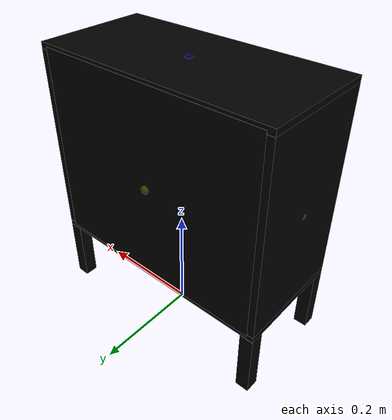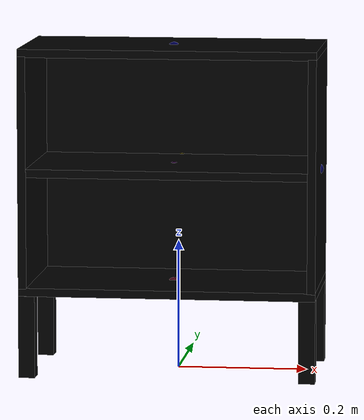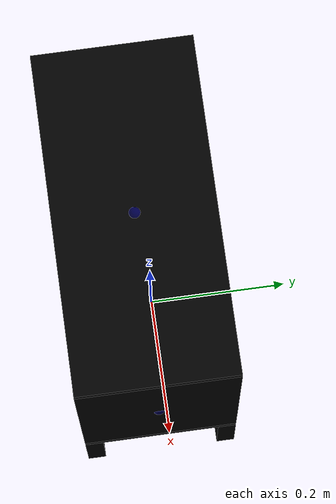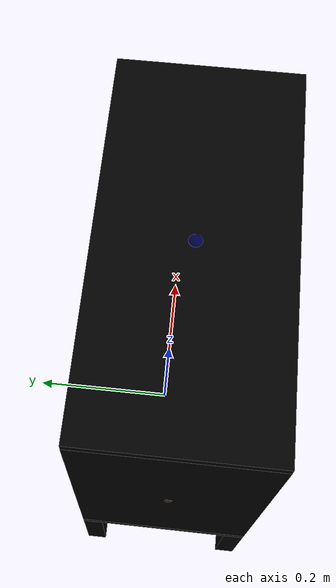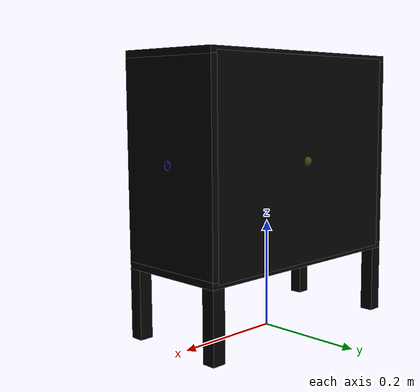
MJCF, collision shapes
<mujoco model="bookcase_agerum_0006">
  <custom>
    <numeric data="0.424249 0.27183 0.01267 0.707107 0.0 -0.707107 -0.0" name="0_part0_initpos" />
    <numeric data="0.065642 -0.058725 0.00626 0.0 1.0 0.0 0.0" name="9_part9_initpos" />
    <numeric data="-0.443256 0.052999 0.0063 0.707107 0.0 0.707107 0.0" name="8_part8_initpos" />
    <numeric data="0.521462 -0.055008 0.00632 -0.707107 -0.0 0.707107 -0.0" name="7_part7_initpos" />
    <numeric data="-0.430766 0.333003 0.00632 1.0 0.0 0.0 0.0" name="6_part6_initpos" />
    <numeric data="-0.454857 -0.310557 0.00156 0.0 0.0 -0.707107 -0.707107" name="5_part5_initpos" />
    <numeric data="0.058187 0.242598 0.0063 0.0 1.0 0.0 0.0" name="4_part4_initpos" />
    <numeric data="0.427126 0.340304 0.01267 -0.707107 0.0 0.707107 0.0" name="3_part3_initpos" />
    <numeric data="0.424231 0.179422 0.01267 0.707107 -0.0 -0.707107 0.0" name="2_part2_initpos" />
    <numeric data="0.424084 0.41124 0.01267 0.492237 -0.492237 -0.507644 0.507645" name="1_part1_initpos" />
  </custom>
  <asset>
    <mesh file="bookcase_agerum_0006/0.stl" name="part0" scale="0.0005 0.0005 0.0005" />
    <mesh file="bookcase_agerum_0006/9.stl" name="part9" scale="0.0005 0.0005 0.0005" />
    <mesh file="bookcase_agerum_0006/8.stl" name="part8" scale="0.0005 0.0005 0.0005" />
    <mesh file="bookcase_agerum_0006/7.stl" name="part7" scale="0.0005 0.0005 0.0005" />
    <mesh file="bookcase_agerum_0006/6.stl" name="part6" scale="0.0005 0.0005 0.0005" />
    <mesh file="bookcase_agerum_0006/5.stl" name="part5" scale="0.0005 0.0005 0.0005" />
    <mesh file="bookcase_agerum_0006/4.stl" name="part4" scale="0.0005 0.0005 0.0005" />
    <mesh file="bookcase_agerum_0006/3.stl" name="part3" scale="0.0005 0.0005 0.0005" />
    <mesh file="bookcase_agerum_0006/2.stl" name="part2" scale="0.0005 0.0005 0.0005" />
    <mesh file="bookcase_agerum_0006/1.stl" name="part1" scale="0.0005 0.0005 0.0005" />
  </asset>
  <worldbody><body name="combined_body" pos="0.21 0.08 0.06414999389648437" quat="1 0 0 0"><geom conaffinity="0" contype="0" density="0" mesh="part0" name="0_part0_mesh" pos="0.0 -5e-11 0.0" rgba="0.82 0.71 0.55 1" type="mesh" quat="1 0 0 0" />
      <geom density="50" name="noviz_collision_0_part0_0" pos="0.0 -5e-11 0.0" quat="1 0 0 0" rgba="0 0 0 0" size="0.01272 0.0127 0.06363" solref="0.001 1" type="box" />
      <site name="0_part0_horizontal_radius_site" pos="0.0 -5e-11 0.0" quat="1 0 0 0" rgba="0 0 0 0" size="0.01" />
      <site name="0_part0_top_site" pos="0.0 -5e-11 0.0" quat="1 0 0 0" rgba="0 0 0 0" size="0.01" />
      <site name="0_part0_bottom_site" pos="0.0 -5e-11 0.0" quat="1 0 0 0" rgba="0 0 0 0" size="0.01" />
      <site name="0_part0_corner_site8" pos="0.0 -5e-11 0.0" quat="1 0 0 0" rgba="0 0 0 0" size="0.008" />
      <site name="0_part0_corner_site7" pos="0.0 -5e-11 0.0" quat="1 0 0 0" rgba="0 0 0 0" size="0.008" />
      <site name="0_part0_corner_site6" pos="0.0 -5e-11 0.0" quat="1 0 0 0" rgba="0 0 0 0" size="0.008" />
      <site name="0_part0_corner_site5" pos="0.0 -5e-11 0.0" quat="1 0 0 0" rgba="0 0 0 0" size="0.008" />
      <site name="0_part0_corner_site4" pos="0.0 -5e-11 0.0" quat="1 0 0 0" rgba="0 0 0 0" size="0.008" />
      <site name="0_part0_corner_site3" pos="0.0 -5e-11 0.0" quat="1 0 0 0" rgba="0 0 0 0" size="0.008" />
      <site name="0_part0_corner_site2" pos="0.0 -5e-11 0.0" quat="1 0 0 0" rgba="0 0 0 0" size="0.008" />
      <site name="0_part0_corner_site1" pos="0.0 -5e-11 0.0" quat="1 0 0 0" rgba="0 0 0 0" size="0.008" />
      <site name="leg-floor,0,90,180,270,conn_site4" pos="0.0 -5e-11 0.0" quat="1 0 0 0" rgba="0.9019 0.0980 0.2941 0.3" size="0.008" />
    <geom conaffinity="0" contype="0" density="0" mesh="part9" name="9_part9_mesh" pos="-0.21589999635 -0.09524999645 0.43814999390000003" rgba="0.82 0.71 0.55 1" type="mesh" quat="1 0 0 0" />
      <geom density="50" name="noviz_collision_9_part9_0" pos="-0.21589999635 -0.09524999645 0.43814999390000003" quat="1 0 0 0" rgba="0 0 0 0" size="0.2286 0.10759 0.00632" solref="0.001 1" type="box" />
      <site name="9_part9_horizontal_radius_site" pos="-0.21589999635 -0.09524999645 0.43814999390000003" quat="1 0 0 0" rgba="0 0 0 0" size="0.01" />
      <site name="9_part9_top_site" pos="-0.21589999635 -0.09524999645 0.43814999390000003" quat="1 0 0 0" rgba="0 0 0 0" size="0.01" />
      <site name="9_part9_bottom_site" pos="-0.21589999635 -0.09524999645 0.43814999390000003" quat="1 0 0 0" rgba="0 0 0 0" size="0.01" />
      <site name="9_part9_corner_site8" pos="-0.21589999635 -0.09524999645 0.43814999390000003" quat="1 0 0 0" rgba="0 0 0 0" size="0.008" />
      <site name="9_part9_corner_site7" pos="-0.21589999635 -0.09524999645 0.43814999390000003" quat="1 0 0 0" rgba="0 0 0 0" size="0.008" />
      <site name="9_part9_corner_site6" pos="-0.21589999635 -0.09524999645 0.43814999390000003" quat="1 0 0 0" rgba="0 0 0 0" size="0.008" />
      <site name="9_part9_corner_site5" pos="-0.21589999635 -0.09524999645 0.43814999390000003" quat="1 0 0 0" rgba="0 0 0 0" size="0.008" />
      <site name="9_part9_corner_site4" pos="-0.21589999635 -0.09524999645 0.43814999390000003" quat="1 0 0 0" rgba="0 0 0 0" size="0.008" />
      <site name="9_part9_corner_site3" pos="-0.21589999635 -0.09524999645 0.43814999390000003" quat="1 0 0 0" rgba="0 0 0 0" size="0.008" />
      <site name="9_part9_corner_site2" pos="-0.21589999635 -0.09524999645 0.43814999390000003" quat="1 0 0 0" rgba="0 0 0 0" size="0.008" />
      <site name="9_part9_corner_site1" pos="-0.21589999635 -0.09524999645 0.43814999390000003" quat="1 0 0 0" rgba="0 0 0 0" size="0.008" />
      <site name="top-leftwall,0,conn_site1" pos="-0.21589999635 -0.09524999645 0.43814999390000003" quat="1 0 0 0" rgba="0.2352 0.7058 0.2941 0.3" size="0.008" />
      <site name="top-back,0,conn_site1" pos="-0.21589999635 -0.09524999645 0.43814999390000003" quat="1 0 0 0" rgba="1.0 0.8823 0.0980 0.3" size="0.008" />
      <site name="top-rightwall,0,180,conn_site1" pos="-0.21589999635 -0.09524999645 0.43814999390000003" quat="1 0 0 0" rgba="0 0 1 0.3" size="0.01" />
    <geom conaffinity="0" contype="0" density="0" mesh="part8" name="8_part8_mesh" pos="0.00635000055 -0.09524999645 0.2539999977" rgba="0.82 0.71 0.55 1" type="mesh" quat="1 0 0 0" />
      <geom density="50" name="noviz_collision_8_part8_0" pos="0.00635000055 -0.09524999645 0.2539999977" quat="1 0 0 0" rgba="0 0 0 0" size="0.00634 0.10796 0.17906" solref="0.001 1" type="box" />
      <site name="8_part8_horizontal_radius_site" pos="0.00635000055 -0.09524999645 0.2539999977" quat="1 0 0 0" rgba="0 0 0 0" size="0.01" />
      <site name="8_part8_top_site" pos="0.00635000055 -0.09524999645 0.2539999977" quat="1 0 0 0" rgba="0 0 0 0" size="0.01" />
      <site name="8_part8_bottom_site" pos="0.00635000055 -0.09524999645 0.2539999977" quat="1 0 0 0" rgba="0 0 0 0" size="0.01" />
      <site name="8_part8_corner_site8" pos="0.00635000055 -0.09524999645 0.2539999977" quat="1 0 0 0" rgba="0 0 0 0" size="0.008" />
      <site name="8_part8_corner_site7" pos="0.00635000055 -0.09524999645 0.2539999977" quat="1 0 0 0" rgba="0 0 0 0" size="0.008" />
      <site name="8_part8_corner_site6" pos="0.00635000055 -0.09524999645 0.2539999977" quat="1 0 0 0" rgba="0 0 0 0" size="0.008" />
      <site name="8_part8_corner_site5" pos="0.00635000055 -0.09524999645 0.2539999977" quat="1 0 0 0" rgba="0 0 0 0" size="0.008" />
      <site name="8_part8_corner_site4" pos="0.00635000055 -0.09524999645 0.2539999977" quat="1 0 0 0" rgba="0 0 0 0" size="0.008" />
      <site name="8_part8_corner_site3" pos="0.00635000055 -0.09524999645 0.2539999977" quat="1 0 0 0" rgba="0 0 0 0" size="0.008" />
      <site name="8_part8_corner_site2" pos="0.00635000055 -0.09524999645 0.2539999977" quat="1 0 0 0" rgba="0 0 0 0" size="0.008" />
      <site name="8_part8_corner_site1" pos="0.00635000055 -0.09524999645 0.2539999977" quat="1 0 0 0" rgba="0 0 0 0" size="0.008" />
      <site name="rightwall-shelf,0,conn_site1" pos="0.00635000055 -0.09524999645 0.2539999977" quat="1 0 0 0" rgba="0.2627 0.3882 0.8470 0.3" size="0.008" />
      <site name="rightwall-top,0,180,conn_site1" pos="0.00635000055 -0.09524999645 0.2539999977" quat="1 0 0 0" rgba="0 0 1 0.3" size="0.01" />
      <site name="rightwall-floor,0,180,conn_site1" pos="0.00635000055 -0.09524999645 0.2539999977" quat="1 0 0 0" rgba="0 0 1 0.3" size="0.01" />
    <geom conaffinity="0" contype="0" density="0" mesh="part7" name="7_part7_mesh" pos="-0.4381499995 -0.09524999645 0.2539999977" rgba="0.82 0.71 0.55 1" type="mesh" quat="1 0 0 0" />
      <geom density="50" name="noviz_collision_7_part7_0" pos="-0.4381499995 -0.09524999645 0.2539999977" quat="1 0 0 0" rgba="0 0 0 0" size="0.00636 0.10796 0.17906" solref="0.001 1" type="box" />
      <site name="7_part7_horizontal_radius_site" pos="-0.4381499995 -0.09524999645 0.2539999977" quat="1 0 0 0" rgba="0 0 0 0" size="0.01" />
      <site name="7_part7_top_site" pos="-0.4381499995 -0.09524999645 0.2539999977" quat="1 0 0 0" rgba="0 0 0 0" size="0.01" />
      <site name="7_part7_bottom_site" pos="-0.4381499995 -0.09524999645 0.2539999977" quat="1 0 0 0" rgba="0 0 0 0" size="0.01" />
      <site name="7_part7_corner_site8" pos="-0.4381499995 -0.09524999645 0.2539999977" quat="1 0 0 0" rgba="0 0 0 0" size="0.008" />
      <site name="7_part7_corner_site7" pos="-0.4381499995 -0.09524999645 0.2539999977" quat="1 0 0 0" rgba="0 0 0 0" size="0.008" />
      <site name="7_part7_corner_site6" pos="-0.4381499995 -0.09524999645 0.2539999977" quat="1 0 0 0" rgba="0 0 0 0" size="0.008" />
      <site name="7_part7_corner_site5" pos="-0.4381499995 -0.09524999645 0.2539999977" quat="1 0 0 0" rgba="0 0 0 0" size="0.008" />
      <site name="7_part7_corner_site4" pos="-0.4381499995 -0.09524999645 0.2539999977" quat="1 0 0 0" rgba="0 0 0 0" size="0.008" />
      <site name="7_part7_corner_site3" pos="-0.4381499995 -0.09524999645 0.2539999977" quat="1 0 0 0" rgba="0 0 0 0" size="0.008" />
      <site name="7_part7_corner_site2" pos="-0.4381499995 -0.09524999645 0.2539999977" quat="1 0 0 0" rgba="0 0 0 0" size="0.008" />
      <site name="7_part7_corner_site1" pos="-0.4381499995 -0.09524999645 0.2539999977" quat="1 0 0 0" rgba="0 0 0 0" size="0.008" />
      <site name="leftwall-floor,0,conn_site1" pos="-0.4381499995 -0.09524999645 0.2539999977" quat="1 0 0 0" rgba="0.9607 0.5098 0.1921 0.3" size="0.008" />
      <site name="leftwall-shelf,0,conn_site1" pos="-0.4381499995 -0.09524999645 0.2539999977" quat="1 0 0 0" rgba="0.5686 0.1176 0.7058 0.3" size="0.008" />
      <site name="leftwall-top,0,conn_site1" pos="-0.4381499995 -0.09524999645 0.2539999977" quat="1 0 0 0" rgba="0.2352 0.7058 0.2941 0.3" size="0.008" />
    <geom conaffinity="0" contype="0" density="0" mesh="part6" name="6_part6_mesh" pos="-0.21590000155000003 -0.09683749645 0.254" rgba="0.82 0.71 0.55 1" type="mesh" quat="1 0 0 0" />
      <geom density="50" name="noviz_collision_6_part6_0" pos="-0.21590000155000003 -0.09683749645 0.254" quat="1 0 0 0" rgba="0 0 0 0" size="0.2159 0.10642 0.00635" solref="0.001 1" type="box" />
      <site name="6_part6_horizontal_radius_site" pos="-0.21590000155000003 -0.09683749645 0.254" quat="1 0 0 0" rgba="0 0 0 0" size="0.01" />
      <site name="6_part6_top_site" pos="-0.21590000155000003 -0.09683749645 0.254" quat="1 0 0 0" rgba="0 0 0 0" size="0.01" />
      <site name="6_part6_bottom_site" pos="-0.21590000155000003 -0.09683749645 0.254" quat="1 0 0 0" rgba="0 0 0 0" size="0.01" />
      <site name="6_part6_corner_site8" pos="-0.21590000155000003 -0.09683749645 0.254" quat="1 0 0 0" rgba="0 0 0 0" size="0.008" />
      <site name="6_part6_corner_site7" pos="-0.21590000155000003 -0.09683749645 0.254" quat="1 0 0 0" rgba="0 0 0 0" size="0.008" />
      <site name="6_part6_corner_site6" pos="-0.21590000155000003 -0.09683749645 0.254" quat="1 0 0 0" rgba="0 0 0 0" size="0.008" />
      <site name="6_part6_corner_site5" pos="-0.21590000155000003 -0.09683749645 0.254" quat="1 0 0 0" rgba="0 0 0 0" size="0.008" />
      <site name="6_part6_corner_site4" pos="-0.21590000155000003 -0.09683749645 0.254" quat="1 0 0 0" rgba="0 0 0 0" size="0.008" />
      <site name="6_part6_corner_site3" pos="-0.21590000155000003 -0.09683749645 0.254" quat="1 0 0 0" rgba="0 0 0 0" size="0.008" />
      <site name="6_part6_corner_site2" pos="-0.21590000155000003 -0.09683749645 0.254" quat="1 0 0 0" rgba="0 0 0 0" size="0.008" />
      <site name="6_part6_corner_site1" pos="-0.21590000155000003 -0.09683749645 0.254" quat="1 0 0 0" rgba="0 0 0 0" size="0.008" />
      <site name="shelf-leftwall,0,conn_site1" pos="-0.21590000155000003 -0.09683749645 0.254" quat="1 0 0 0" rgba="0.5686 0.1176 0.7058 0.3" size="0.008" />
      <site name="shelf-rightwall,0,conn_site1" pos="-0.21590000155000003 -0.09683749645 0.254" quat="1 0 0 0" rgba="0.2627 0.3882 0.8470 0.3" size="0.008" />
    <geom conaffinity="0" contype="0" density="0" mesh="part5" name="5_part5_mesh" pos="-0.21590000155000003 0.0111125031 0.254" rgba="0.82 0.71 0.55 1" type="mesh" quat="1 0 0 0" />
      <geom density="50" name="noviz_collision_5_part5_0" pos="-0.21590000155000003 0.0111125031 0.254" quat="1 0 0 0" rgba="0 0 0 0" size="0.2159 0.00159 0.18415" solref="0.001 1" type="box" />
      <site name="5_part5_horizontal_radius_site" pos="-0.21590000155000003 0.0111125031 0.254" quat="1 0 0 0" rgba="0 0 0 0" size="0.01" />
      <site name="5_part5_top_site" pos="-0.21590000155000003 0.0111125031 0.254" quat="1 0 0 0" rgba="0 0 0 0" size="0.01" />
      <site name="5_part5_bottom_site" pos="-0.21590000155000003 0.0111125031 0.254" quat="1 0 0 0" rgba="0 0 0 0" size="0.01" />
      <site name="5_part5_corner_site8" pos="-0.21590000155000003 0.0111125031 0.254" quat="1 0 0 0" rgba="0 0 0 0" size="0.008" />
      <site name="5_part5_corner_site7" pos="-0.21590000155000003 0.0111125031 0.254" quat="1 0 0 0" rgba="0 0 0 0" size="0.008" />
      <site name="5_part5_corner_site6" pos="-0.21590000155000003 0.0111125031 0.254" quat="1 0 0 0" rgba="0 0 0 0" size="0.008" />
      <site name="5_part5_corner_site5" pos="-0.21590000155000003 0.0111125031 0.254" quat="1 0 0 0" rgba="0 0 0 0" size="0.008" />
      <site name="5_part5_corner_site4" pos="-0.21590000155000003 0.0111125031 0.254" quat="1 0 0 0" rgba="0 0 0 0" size="0.008" />
      <site name="5_part5_corner_site3" pos="-0.21590000155000003 0.0111125031 0.254" quat="1 0 0 0" rgba="0 0 0 0" size="0.008" />
      <site name="5_part5_corner_site2" pos="-0.21590000155000003 0.0111125031 0.254" quat="1 0 0 0" rgba="0 0 0 0" size="0.008" />
      <site name="5_part5_corner_site1" pos="-0.21590000155000003 0.0111125031 0.254" quat="1 0 0 0" rgba="0 0 0 0" size="0.008" />
      <site name="back-top,0,conn_site1" pos="-0.21590000155000003 0.0111125031 0.254" quat="1 0 0 0" rgba="1.0 0.8823 0.0980 0.3" size="0.008" />
    <geom conaffinity="0" contype="0" density="0" mesh="part4" name="4_part4_mesh" pos="-0.21589999635 -0.09524999645 0.06985" rgba="0.82 0.71 0.55 1" type="mesh" quat="1 0 0 0" />
      <geom density="50" name="noviz_collision_4_part4_0" pos="-0.21589999635 -0.09524999645 0.06985" quat="1 0 0 0" rgba="0 0 0 0" size="0.2286 0.10759 0.00634" solref="0.001 1" type="box" />
      <site name="4_part4_horizontal_radius_site" pos="-0.21589999635 -0.09524999645 0.06985" quat="1 0 0 0" rgba="0 0 0 0" size="0.01" />
      <site name="4_part4_top_site" pos="-0.21589999635 -0.09524999645 0.06985" quat="1 0 0 0" rgba="0 0 0 0" size="0.01" />
      <site name="4_part4_bottom_site" pos="-0.21589999635 -0.09524999645 0.06985" quat="1 0 0 0" rgba="0 0 0 0" size="0.01" />
      <site name="4_part4_corner_site8" pos="-0.21589999635 -0.09524999645 0.06985" quat="1 0 0 0" rgba="0 0 0 0" size="0.008" />
      <site name="4_part4_corner_site7" pos="-0.21589999635 -0.09524999645 0.06985" quat="1 0 0 0" rgba="0 0 0 0" size="0.008" />
      <site name="4_part4_corner_site6" pos="-0.21589999635 -0.09524999645 0.06985" quat="1 0 0 0" rgba="0 0 0 0" size="0.008" />
      <site name="4_part4_corner_site5" pos="-0.21589999635 -0.09524999645 0.06985" quat="1 0 0 0" rgba="0 0 0 0" size="0.008" />
      <site name="4_part4_corner_site4" pos="-0.21589999635 -0.09524999645 0.06985" quat="1 0 0 0" rgba="0 0 0 0" size="0.008" />
      <site name="4_part4_corner_site3" pos="-0.21589999635 -0.09524999645 0.06985" quat="1 0 0 0" rgba="0 0 0 0" size="0.008" />
      <site name="4_part4_corner_site2" pos="-0.21589999635 -0.09524999645 0.06985" quat="1 0 0 0" rgba="0 0 0 0" size="0.008" />
      <site name="4_part4_corner_site1" pos="-0.21589999635 -0.09524999645 0.06985" quat="1 0 0 0" rgba="0 0 0 0" size="0.008" />
      <site name="floor-leg,0,90,180,270,conn_site4" pos="-0.21589999635 -0.09524999645 0.06985" quat="1 0 0 0" rgba="0.9019 0.0980 0.2941 0.3" size="0.01" />
      <site name="floor-leg,0,90,180,270,conn_site3" pos="-0.21589999635 -0.09524999645 0.06985" quat="1 0 0 0" rgba="0.9019 0.0980 0.2941 0.3" size="0.01" />
      <site name="floor-leg,0,90,180,270,conn_site2" pos="-0.21589999635 -0.09524999645 0.06985" quat="1 0 0 0" rgba="0.9019 0.0980 0.2941 0.3" size="0.01" />
      <site name="floor-leg,0,90,180,270,conn_site1" pos="-0.21589999635 -0.09524999645 0.06985" quat="1 0 0 0" rgba="0.9019 0.0980 0.2941 0.3" size="0.01" />
      <site name="floor-leftwall,0,conn_site1" pos="-0.21589999635 -0.09524999645 0.06985" quat="1 0 0 0" rgba="0.9607 0.5098 0.1921 0.3" size="0.008" />
      <site name="floor-rightwall,0,180,conn_site1" pos="-0.21589999635 -0.09524999645 0.06985" quat="1 0 0 0" rgba="0 0 1 0.3" size="0.01" />
    <geom conaffinity="0" contype="0" density="0" mesh="part3" name="3_part3_mesh" pos="-0.43179999695 -0.1904999879 0.0" rgba="0.82 0.71 0.55 1" type="mesh" quat="1 0 0 0" />
      <geom density="50" name="noviz_collision_3_part3_0" pos="-0.43179999695 -0.1904999879 0.0" quat="1 0 0 0" rgba="0 0 0 0" size="0.01268 0.0127 0.06363" solref="0.001 1" type="box" />
      <site name="3_part3_horizontal_radius_site" pos="-0.43179999695 -0.1904999879 0.0" quat="1 0 0 0" rgba="0 0 0 0" size="0.01" />
      <site name="3_part3_top_site" pos="-0.43179999695 -0.1904999879 0.0" quat="1 0 0 0" rgba="0 0 0 0" size="0.01" />
      <site name="3_part3_bottom_site" pos="-0.43179999695 -0.1904999879 0.0" quat="1 0 0 0" rgba="0 0 0 0" size="0.01" />
      <site name="3_part3_corner_site8" pos="-0.43179999695 -0.1904999879 0.0" quat="1 0 0 0" rgba="0 0 0 0" size="0.008" />
      <site name="3_part3_corner_site7" pos="-0.43179999695 -0.1904999879 0.0" quat="1 0 0 0" rgba="0 0 0 0" size="0.008" />
      <site name="3_part3_corner_site6" pos="-0.43179999695 -0.1904999879 0.0" quat="1 0 0 0" rgba="0 0 0 0" size="0.008" />
      <site name="3_part3_corner_site5" pos="-0.43179999695 -0.1904999879 0.0" quat="1 0 0 0" rgba="0 0 0 0" size="0.008" />
      <site name="3_part3_corner_site4" pos="-0.43179999695 -0.1904999879 0.0" quat="1 0 0 0" rgba="0 0 0 0" size="0.008" />
      <site name="3_part3_corner_site3" pos="-0.43179999695 -0.1904999879 0.0" quat="1 0 0 0" rgba="0 0 0 0" size="0.008" />
      <site name="3_part3_corner_site2" pos="-0.43179999695 -0.1904999879 0.0" quat="1 0 0 0" rgba="0 0 0 0" size="0.008" />
      <site name="3_part3_corner_site1" pos="-0.43179999695 -0.1904999879 0.0" quat="1 0 0 0" rgba="0 0 0 0" size="0.008" />
      <site name="leg-floor,0,90,180,270,conn_site6" pos="-0.43179999695 -0.1904999879 0.0" quat="1 0 0 0" rgba="0.9019 0.0980 0.2941 0.3" size="0.008" />
    <geom conaffinity="0" contype="0" density="0" mesh="part2" name="2_part2_mesh" pos="-0.43179999695 -5e-11 0.0" rgba="0.82 0.71 0.55 1" type="mesh" quat="1 0 0 0" />
      <geom density="50" name="noviz_collision_2_part2_0" pos="-0.43179999695 -5e-11 0.0" quat="1 0 0 0" rgba="0 0 0 0" size="0.01268 0.0127 0.06363" solref="0.001 1" type="box" />
      <site name="2_part2_horizontal_radius_site" pos="-0.43179999695 -5e-11 0.0" quat="1 0 0 0" rgba="0 0 0 0" size="0.01" />
      <site name="2_part2_top_site" pos="-0.43179999695 -5e-11 0.0" quat="1 0 0 0" rgba="0 0 0 0" size="0.01" />
      <site name="2_part2_bottom_site" pos="-0.43179999695 -5e-11 0.0" quat="1 0 0 0" rgba="0 0 0 0" size="0.01" />
      <site name="2_part2_corner_site8" pos="-0.43179999695 -5e-11 0.0" quat="1 0 0 0" rgba="0 0 0 0" size="0.008" />
      <site name="2_part2_corner_site7" pos="-0.43179999695 -5e-11 0.0" quat="1 0 0 0" rgba="0 0 0 0" size="0.008" />
      <site name="2_part2_corner_site6" pos="-0.43179999695 -5e-11 0.0" quat="1 0 0 0" rgba="0 0 0 0" size="0.008" />
      <site name="2_part2_corner_site5" pos="-0.43179999695 -5e-11 0.0" quat="1 0 0 0" rgba="0 0 0 0" size="0.008" />
      <site name="2_part2_corner_site4" pos="-0.43179999695 -5e-11 0.0" quat="1 0 0 0" rgba="0 0 0 0" size="0.008" />
      <site name="2_part2_corner_site3" pos="-0.43179999695 -5e-11 0.0" quat="1 0 0 0" rgba="0 0 0 0" size="0.008" />
      <site name="2_part2_corner_site2" pos="-0.43179999695 -5e-11 0.0" quat="1 0 0 0" rgba="0 0 0 0" size="0.008" />
      <site name="2_part2_corner_site1" pos="-0.43179999695 -5e-11 0.0" quat="1 0 0 0" rgba="0 0 0 0" size="0.008" />
      <site name="leg-floor,0,90,180,270,conn_site3" pos="-0.43179999695 -5e-11 0.0" quat="1 0 0 0" rgba="0.9019 0.0980 0.2941 0.3" size="0.008" />
    <geom conaffinity="0" contype="0" density="0" mesh="part1" name="1_part1_mesh" pos="0.0 -0.1904999879 0.0" rgba="0.82 0.71 0.55 1" type="mesh" quat="1 0 0 0" />
      <geom density="50" name="noviz_collision_1_part1_0" pos="0.0 -0.1904999879 0.0" quat="1 0 0 0" rgba="0 0 0 0" size="0.01272 0.0127 0.06363" solref="0.001 1" type="box" />
      <site name="1_part1_horizontal_radius_site" pos="0.0 -0.1904999879 0.0" quat="1 0 0 0" rgba="0 0 0 0" size="0.01" />
      <site name="1_part1_top_site" pos="0.0 -0.1904999879 0.0" quat="1 0 0 0" rgba="0 0 0 0" size="0.01" />
      <site name="1_part1_bottom_site" pos="0.0 -0.1904999879 0.0" quat="1 0 0 0" rgba="0 0 0 0" size="0.01" />
      <site name="1_part1_corner_site8" pos="0.0 -0.1904999879 0.0" quat="1 0 0 0" rgba="0 0 0 0" size="0.008" />
      <site name="1_part1_corner_site7" pos="0.0 -0.1904999879 0.0" quat="1 0 0 0" rgba="0 0 0 0" size="0.008" />
      <site name="1_part1_corner_site6" pos="0.0 -0.1904999879 0.0" quat="1 0 0 0" rgba="0 0 0 0" size="0.008" />
      <site name="1_part1_corner_site5" pos="0.0 -0.1904999879 0.0" quat="1 0 0 0" rgba="0 0 0 0" size="0.008" />
      <site name="1_part1_corner_site4" pos="0.0 -0.1904999879 0.0" quat="1 0 0 0" rgba="0 0 0 0" size="0.008" />
      <site name="1_part1_corner_site3" pos="0.0 -0.1904999879 0.0" quat="1 0 0 0" rgba="0 0 0 0" size="0.008" />
      <site name="1_part1_corner_site2" pos="0.0 -0.1904999879 0.0" quat="1 0 0 0" rgba="0 0 0 0" size="0.008" />
      <site name="1_part1_corner_site1" pos="0.0 -0.1904999879 0.0" quat="1 0 0 0" rgba="0 0 0 0" size="0.008" />
      <site name="leg-floor,0,90,180,270,conn_site5" pos="0.0 -0.1904999879 0.0" quat="1 0 0 0" rgba="0.9019 0.0980 0.2941 0.3" size="0.008" />
    </body></worldbody><actuator /><sensor /><contact /><default /></mujoco>
